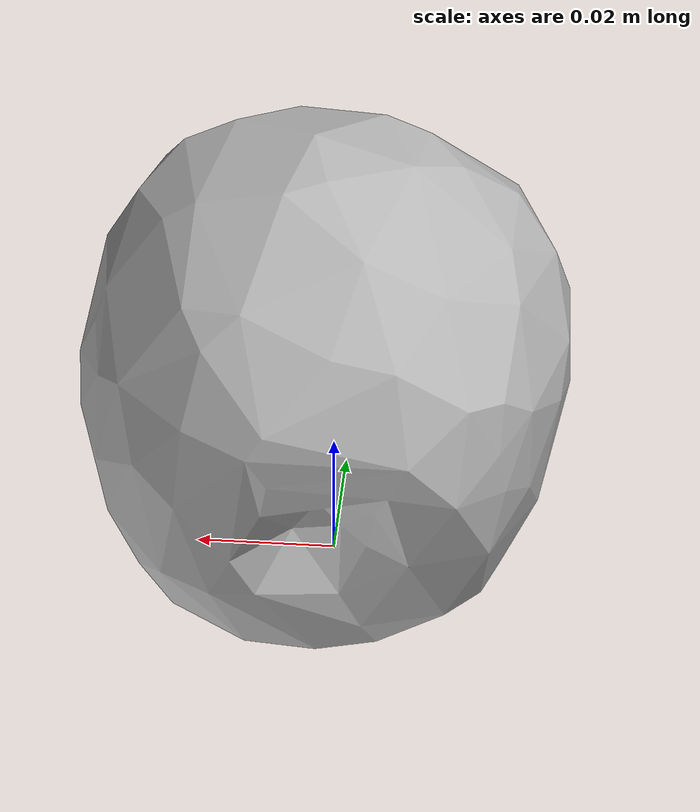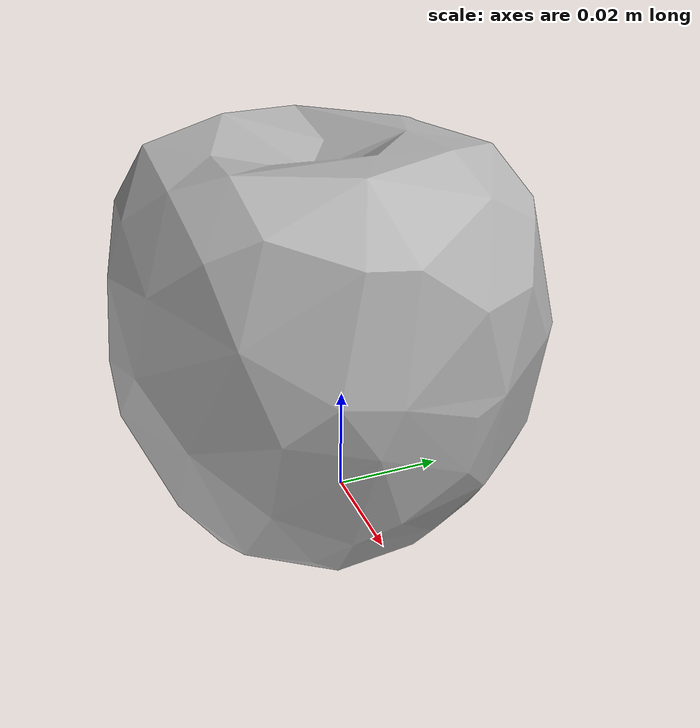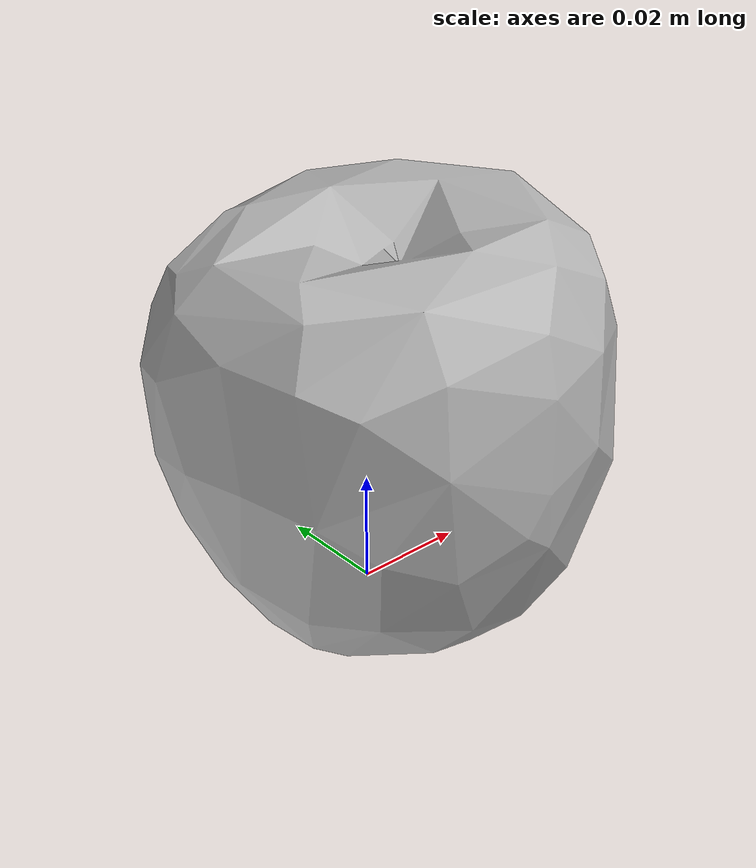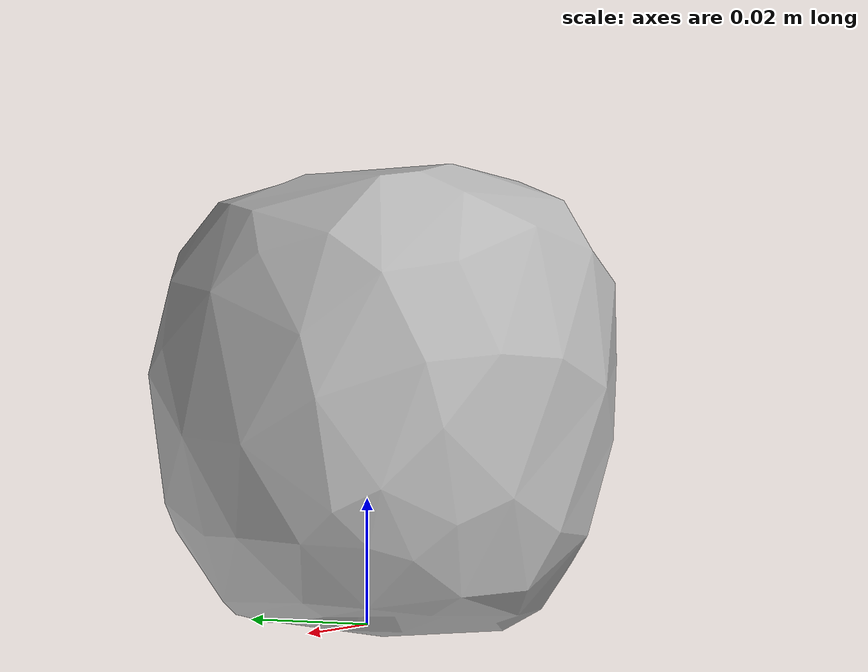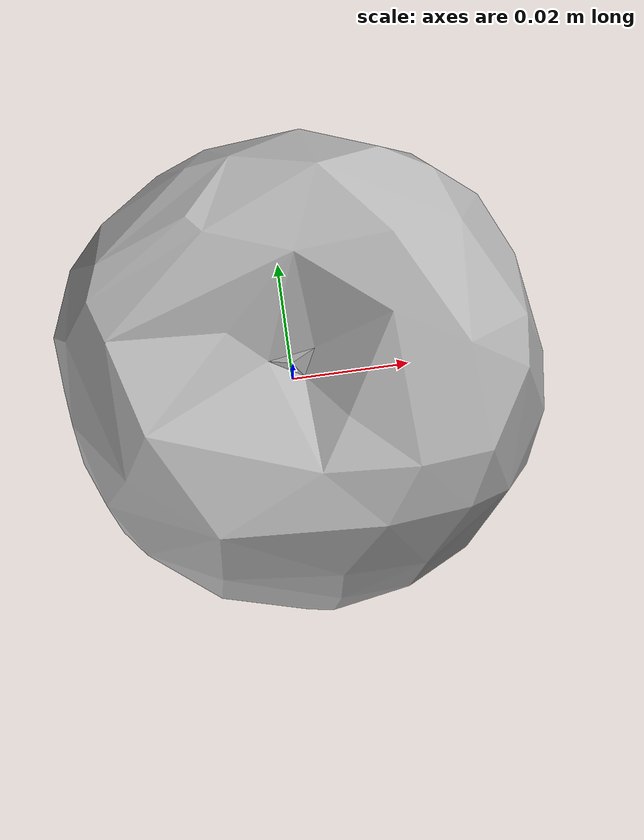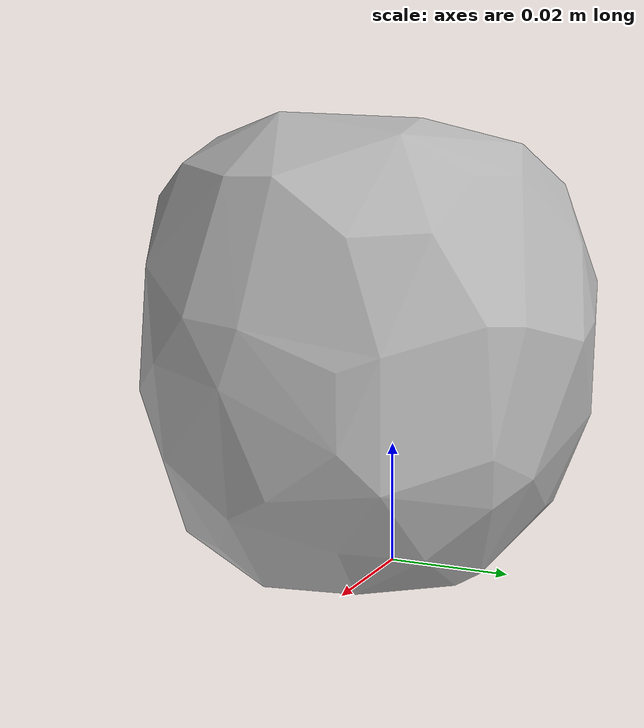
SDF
<?xml version='1.0'?>
<sdf version="1.4">
  <model name="013_apple">
    <static>false</static>
    <link name="link">
      <inertial>
        <pose>0.0012699770286823165 -0.003881575736937297 0.03636596165989428 0.17316769312684274 -0.05190359788323762 -1.6501919452772649</pose>
        <mass>0.025195630460841577</mass>
        <inertia>
          <ixx>1.591809355105597e-05</ixx>
          <ixy>-1.0023699424165908e-21</ixy>
          <ixz>1.858576079271731e-22</ixz>
          <iyy>1.5673851975208638e-05</iyy>
          <iyz>2.511819363416171e-22</iyz>
          <izz>1.5307870798463232e-05</izz>
        </inertia>
      </inertial>
      <collision name="collision">
        <geometry>
          <mesh>
            <!-- Use a downsampled mesh for collisions -->
            <uri>model:///013_apple/013_apple_250_collision.stl</uri>
	        </mesh>
        </geometry>
        <surface>
      </surface>
      </collision>
      <visual name="visual">
        <geometry>
          <mesh>
            <uri>model:///013_apple/textured.obj</uri>
	        </mesh>
        </geometry>
        <material>
          <script>
            <uri>model:///013_apple/013_apple.material</uri>
            <name>013_apple</name>
          </script>
        </material>
      </visual>
    </link>
  </model>
</sdf>
